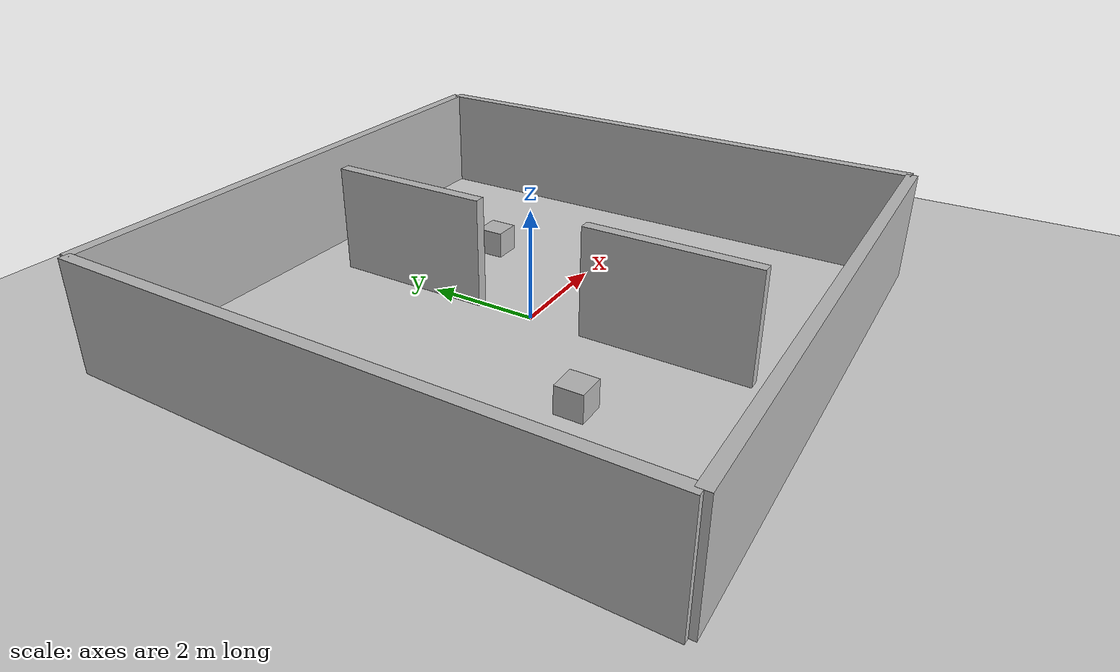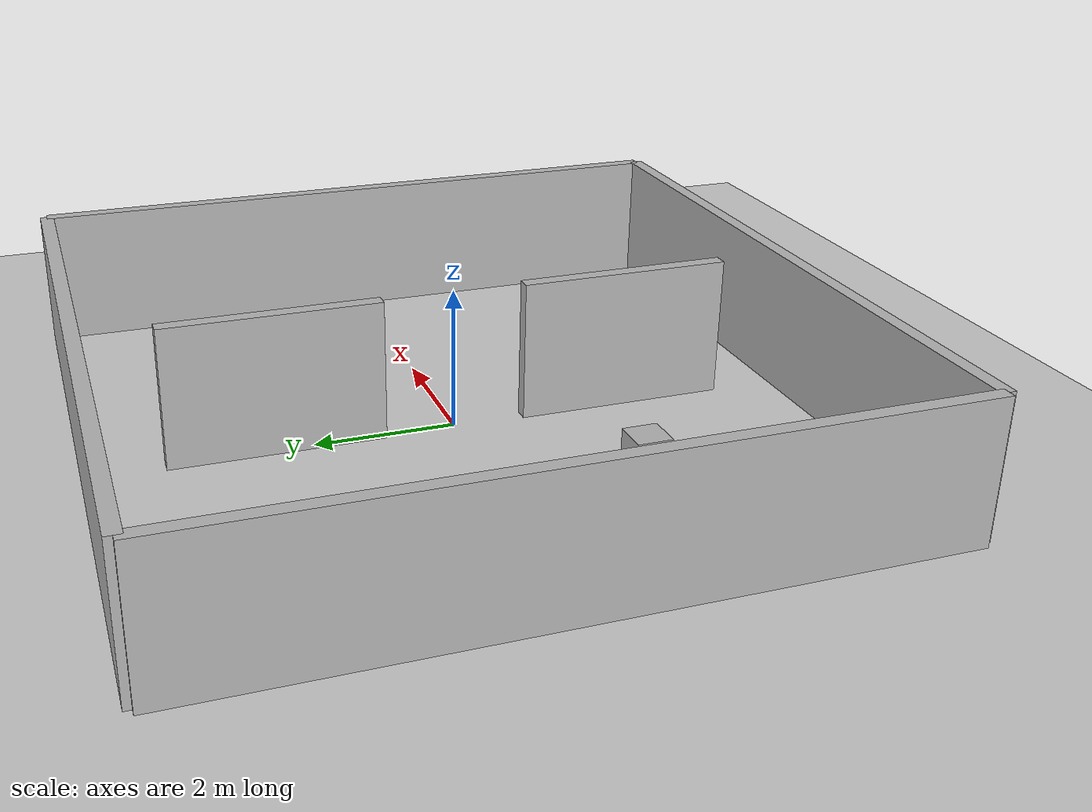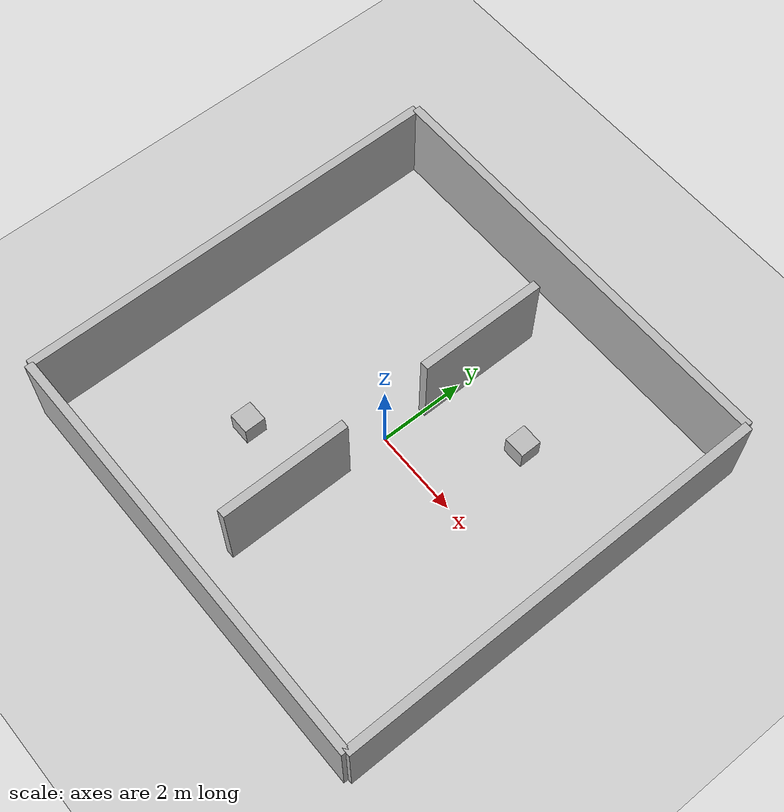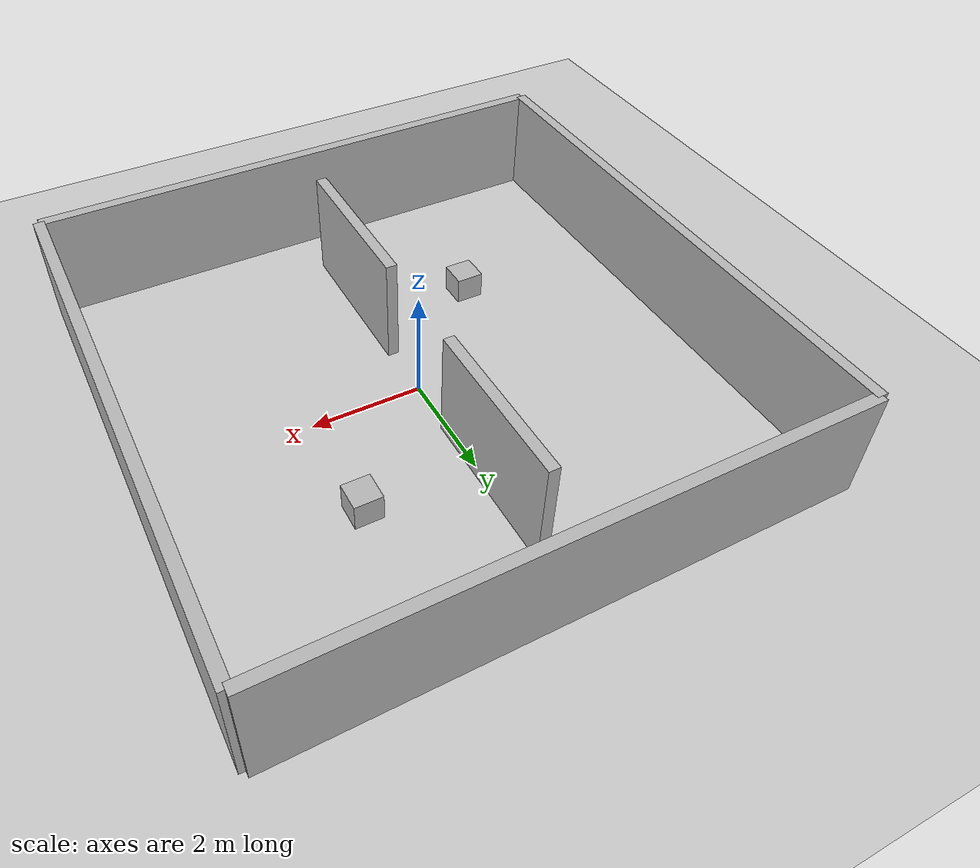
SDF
<sdf version="1.6">
  <world name="indoor_split_world">
    <physics name="1ms" type="ignored">
      <max_step_size>0.001</max_step_size>
      <real_time_factor>1.0</real_time_factor>
    </physics>
    <plugin filename="gz-sim-physics-system" name="gz::sim::systems::Physics"/>
    <plugin filename="gz-sim-user-commands-system" name="gz::sim::systems::UserCommands"/>
    <plugin filename="gz-sim-scene-broadcaster-system" name="gz::sim::systems::SceneBroadcaster"/>
    <plugin filename="gz-sim-sensors-system" name="gz::sim::systems::Sensors">
      <render_engine>ogre2</render_engine>
    </plugin>
    <plugin filename="gz-sim-contact-system" name="gz::sim::systems::Contact"/>

    <light type="directional" name="sun">
      <cast_shadows>true</cast_shadows>
      <pose>0 0 10 0 0 0</pose>
      <diffuse>0.8 0.8 0.8 1</diffuse>
      <specular>0.2 0.2 0.2 1</specular>
      <attenuation>
        <range>1000</range>
        <constant>0.9</constant>
        <linear>0.01</linear>
        <quadratic>0.001</quadratic>
      </attenuation>
      <direction>-0.5 0.1 -0.9</direction>
    </light>

    <!-- Ground Plane -->
    <model name="ground_plane">
      <static>true</static>
      <link name="link">
        <collision name="collision">
          <geometry>
            <plane>
              <normal>0 0 1</normal>
              <size>100 100</size>
            </plane>
          </geometry>
        </collision>
        <visual name="visual">
          <geometry>
            <plane>
              <normal>0 0 1</normal>
              <size>100 100</size>
            </plane>
          </geometry>
          <material>
            <ambient>0.8 0.8 0.8 1</ambient>
            <diffuse>0.8 0.8 0.8 1</diffuse>
            <specular>0.8 0.8 0.8 1</specular>
          </material>
        </visual>
      </link>
    </model>

    <!-- Outer Walls (10x10 area) -->
    <model name="wall_north">
      <static>true</static>
      <pose>0 5 1 0 0 0</pose>
      <link name="link">
        <collision name="collision">
          <geometry>
            <box>
              <size>10 0.2 2</size>
            </box>
          </geometry>
        </collision>
        <visual name="visual">
          <geometry>
            <box>
              <size>10 0.2 2</size>
            </box>
          </geometry>
        </visual>
      </link>
    </model>
    <model name="wall_south">
      <static>true</static>
      <pose>0 -5 1 0 0 0</pose>
      <link name="link">
        <collision name="collision">
          <geometry>
            <box>
              <size>10 0.2 2</size>
            </box>
          </geometry>
        </collision>
        <visual name="visual">
          <geometry>
            <box>
              <size>10 0.2 2</size>
            </box>
          </geometry>
        </visual>
      </link>
    </model>
    <model name="wall_east">
      <static>true</static>
      <pose>5 0 1 0 0 0</pose>
      <link name="link">
        <collision name="collision">
          <geometry>
            <box>
              <size>0.2 10 2</size>
            </box>
          </geometry>
        </collision>
        <visual name="visual">
          <geometry>
            <box>
              <size>0.2 10 2</size>
            </box>
          </geometry>
        </visual>
      </link>
    </model>
    <model name="wall_west">
      <static>true</static>
      <pose>-5 0 1 0 0 0</pose>
      <link name="link">
        <collision name="collision">
          <geometry>
            <box>
              <size>0.2 10 2</size>
            </box>
          </geometry>
        </collision>
        <visual name="visual">
          <geometry>
            <box>
              <size>0.2 10 2</size>
            </box>
          </geometry>
        </visual>
      </link>
    </model>

    <!-- Center Divider Wall with Gap (Door) -->
    <model name="wall_divider_left">
      <static>true</static>
      <pose>0 -2.5 1 0 0 0</pose>
      <link name="link">
        <collision name="collision">
          <geometry>
            <box>
              <size>0.2 3 2</size>
            </box>
          </geometry>
        </collision>
        <visual name="visual">
          <geometry>
            <box>
              <size>0.2 3 2</size>
            </box>
          </geometry>
        </visual>
      </link>
    </model>
    <model name="wall_divider_right">
      <static>true</static>
      <pose>0 2.5 1 0 0 0</pose>
      <link name="link">
        <collision name="collision">
          <geometry>
            <box>
              <size>0.2 3 2</size>
            </box>
          </geometry>
        </collision>
        <visual name="visual">
          <geometry>
            <box>
              <size>0.2 3 2</size>
            </box>
          </geometry>
        </visual>
      </link>
    </model>

    <!-- Obstacles in Room A -->
    <model name="obstacle_roomA">
      <static>true</static>
      <pose>-2 -2 0.25 0 0 0</pose>
      <link name="link">
        <collision name="collision">
          <geometry>
            <box>
              <size>0.5 0.5 0.5</size>
            </box>
          </geometry>
        </collision>
        <visual name="visual">
          <geometry>
            <box>
              <size>0.5 0.5 0.5</size>
            </box>
          </geometry>
        </visual>
      </link>
    </model>

    <!-- Obstacles in Room B -->
    <model name="obstacle_roomB">
      <static>true</static>
      <pose>2 2 0.25 0 0 0</pose>
      <link name="link">
        <collision name="collision">
          <geometry>
            <box>
              <size>0.5 0.5 0.5</size>
            </box>
          </geometry>
        </collision>
        <visual name="visual">
          <geometry>
            <box>
              <size>0.5 0.5 0.5</size>
            </box>
          </geometry>
        </visual>
      </link>
    </model>

  </world>
</sdf>
